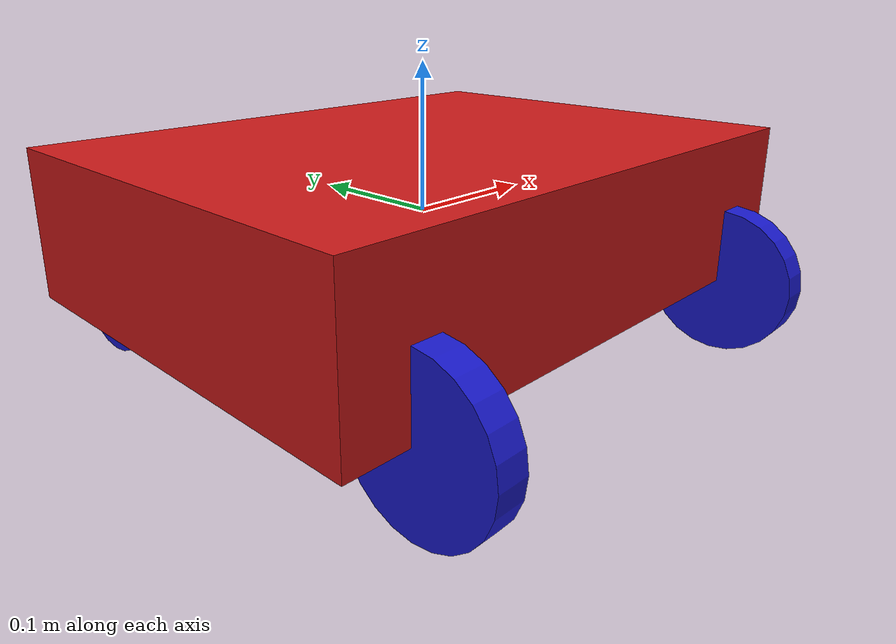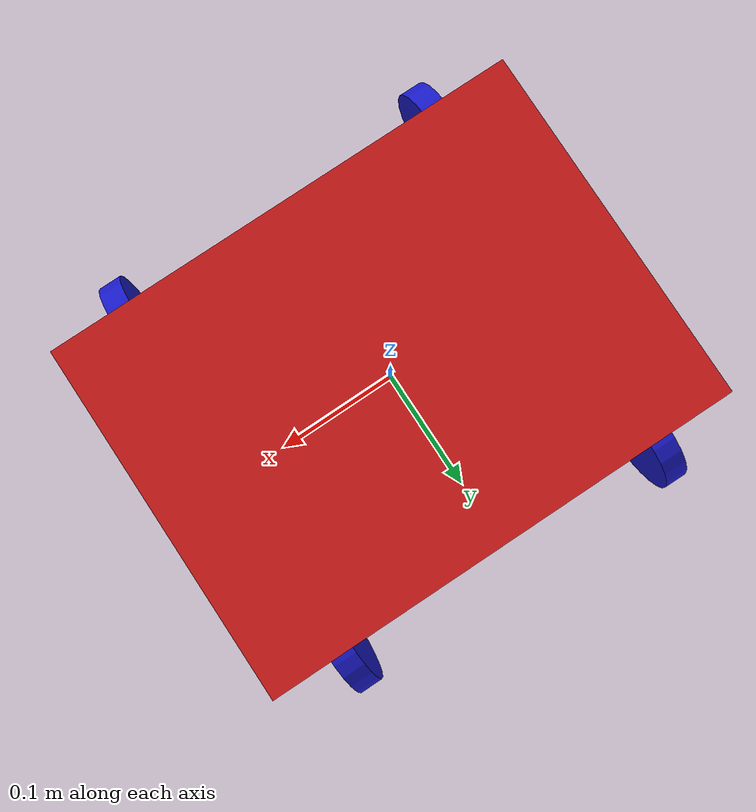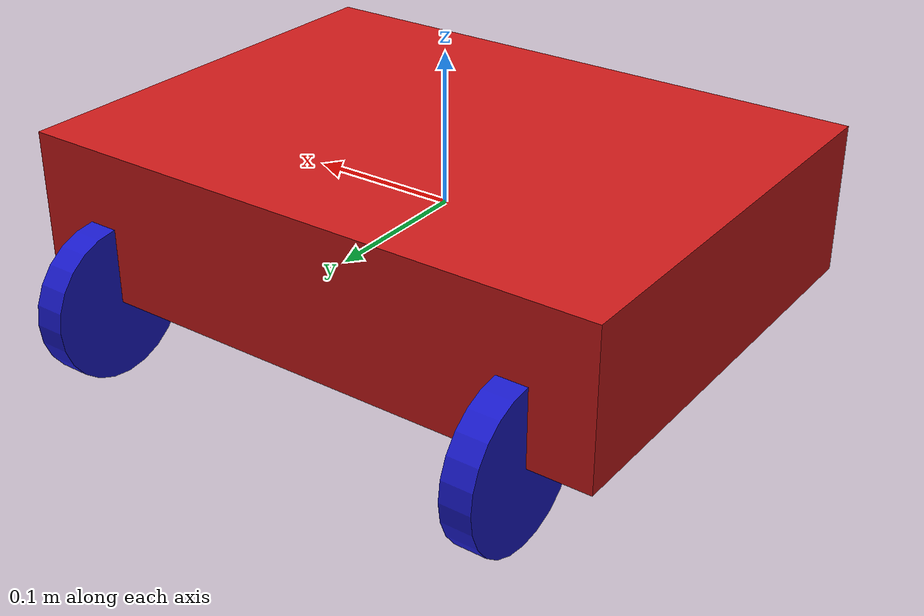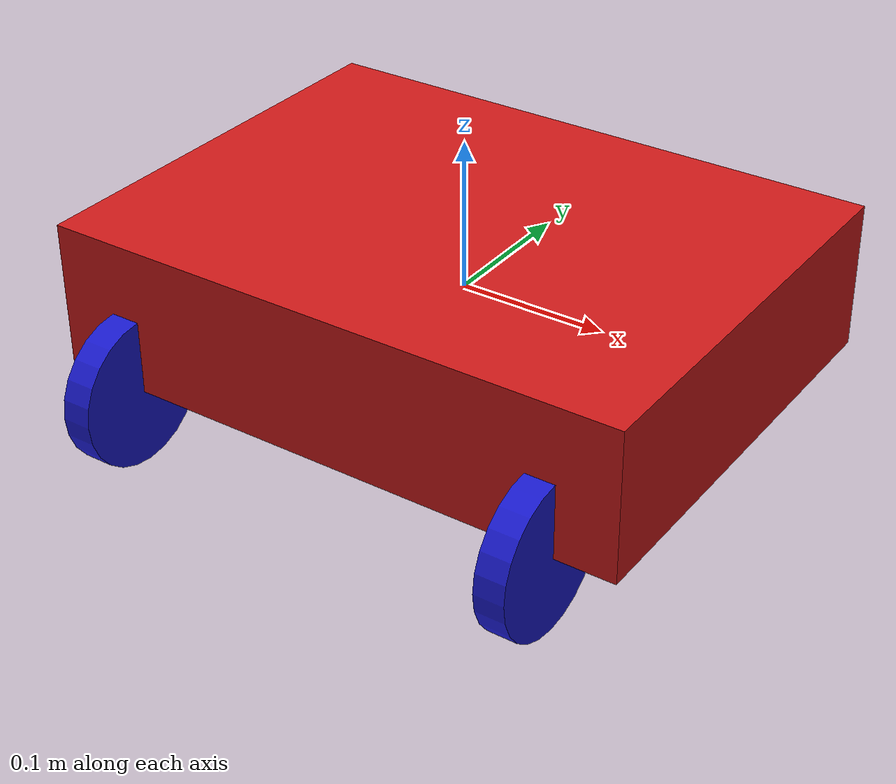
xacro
<?xml version="1.0"?>
<robot name="skid_steer" xmlns:xacro="http://ros.org/wiki/xacro">

  <!-- Parameters -->
  <xacro:property name="wheel_radius" value="0.05"/>
  <xacro:property name="wheel_width" value="0.02"/>
  <xacro:property name="wheel_separation" value="0.3"/>

  <!-- Base link -->
  <link name="base_link">
    <visual>
      <geometry>
        <box size="0.4 0.3 0.1"/>
      </geometry>
      <material name="base_color">
        <color rgba="0.8 0.1 0.1 1.0"/>
      </material>
    </visual>
    <collision>
      <geometry>
        <box size="0.4 0.3 0.1"/>
      </geometry>
    </collision>
    <inertial>
      <mass value="10.0"/>
      <inertia ixx="0.1" ixy="0" ixz="0" iyy="0.1" iyz="0" izz="0.1"/>
    </inertial>
  </link>

  <!-- 4 wheels -->
  <xacro:macro name="wheel" params="name x y">
    <link name="${name}">
      <visual>
        <geometry>
          <cylinder radius="${wheel_radius}" length="${wheel_width}"/>
        </geometry>
        <material name="${name}_color">
          <color rgba="0.1 0.1 0.8 1.0"/>
        </material>
      </visual>
      <collision>
        <geometry>
          <cylinder radius="${wheel_radius}" length="${wheel_width}"/>
        </geometry>
      </collision>
      <inertial>
        <mass value="1.0"/>
        <inertia ixx="0.01" ixy="0" ixz="0" iyy="0.01" iyz="0" izz="0.01"/>
      </inertial>
    </link>
    <joint name="${name}_joint" type="continuous">
      <parent link="base_link"/>
      <child link="${name}"/>
      <origin xyz="${x} ${y} -${wheel_radius}" rpy="0 1.5708 0"/>
      <axis xyz="0 1 0"/>
    </joint>
  </xacro:macro>

  <!-- Wheel positions -->
  <xacro:wheel name="front_left_wheel"  x="0.15" y="0.15"/>
  <xacro:wheel name="front_right_wheel" x="0.15" y="-0.15"/>
  <xacro:wheel name="rear_left_wheel"   x="-0.15" y="0.15"/>
  <xacro:wheel name="rear_right_wheel"  x="-0.15" y="-0.15"/>

  <!-- Gazebo plugins for Gazebo Fortress -->
  <gazebo>
    <!-- ros2_control plugin -->
    <plugin name="ros2_control" filename="libgz_ros2_control.so">
      <parameters>$(find skid_steer_robot)/config/ros2_control.yaml</parameters>
    </plugin>

    <!-- Differential drive plugin for better wheel control -->
    <plugin name="diff_drive" filename="libgz_ros_diff_drive.so">
      <left_joint>front_left_wheel_joint</left_joint>
      <left_joint>rear_left_wheel_joint</left_joint>
      <right_joint>front_right_wheel_joint</right_joint>
      <right_joint>rear_right_wheel_joint</right_joint>
      <wheel_separation>0.3</wheel_separation>
      <wheel_diameter>0.1</wheel_diameter>
      <max_wheel_torque>20</max_wheel_torque>
      <max_wheel_acceleration>1.0</max_wheel_acceleration>
      <publish_odom>true</publish_odom>
      <publish_odom_tf>true</publish_odom_tf>
      <publish_wheel_tf>false</publish_wheel_tf>
      <odometry_frame>odom</odometry_frame>
      <robot_base_frame>base_link</robot_base_frame>
      <odometry_source>world</odometry_source>
      <ros>
        <remapping>cmd_vel:=cmd_vel</remapping>
        <remapping>odom:=odom</remapping>
      </ros>
    </plugin>
  </gazebo>

</robot>
